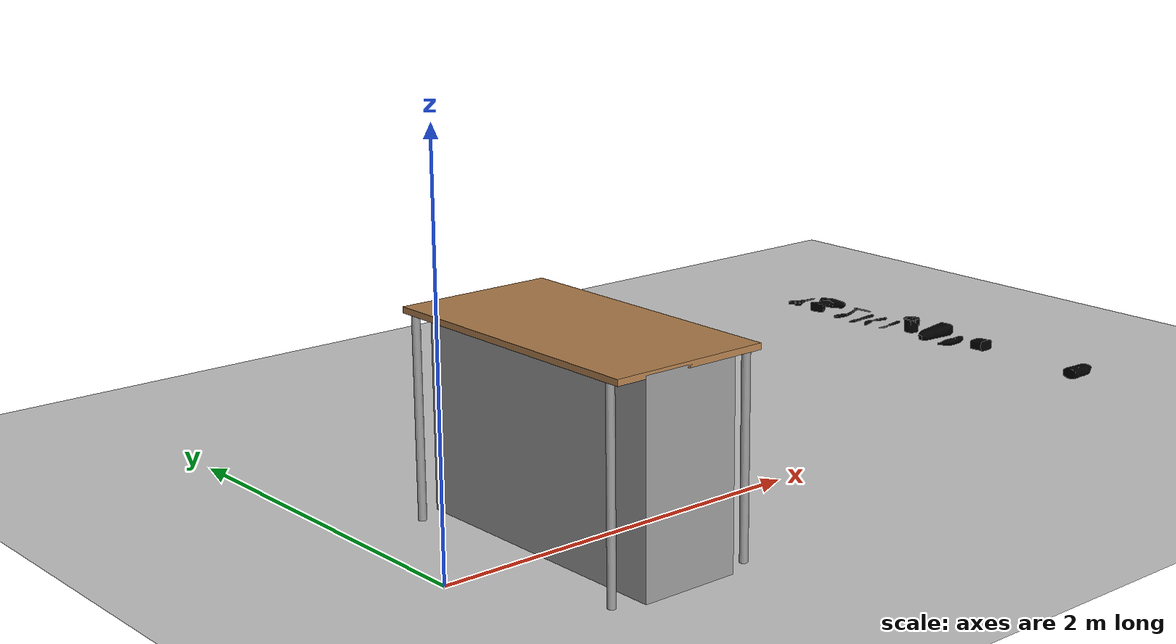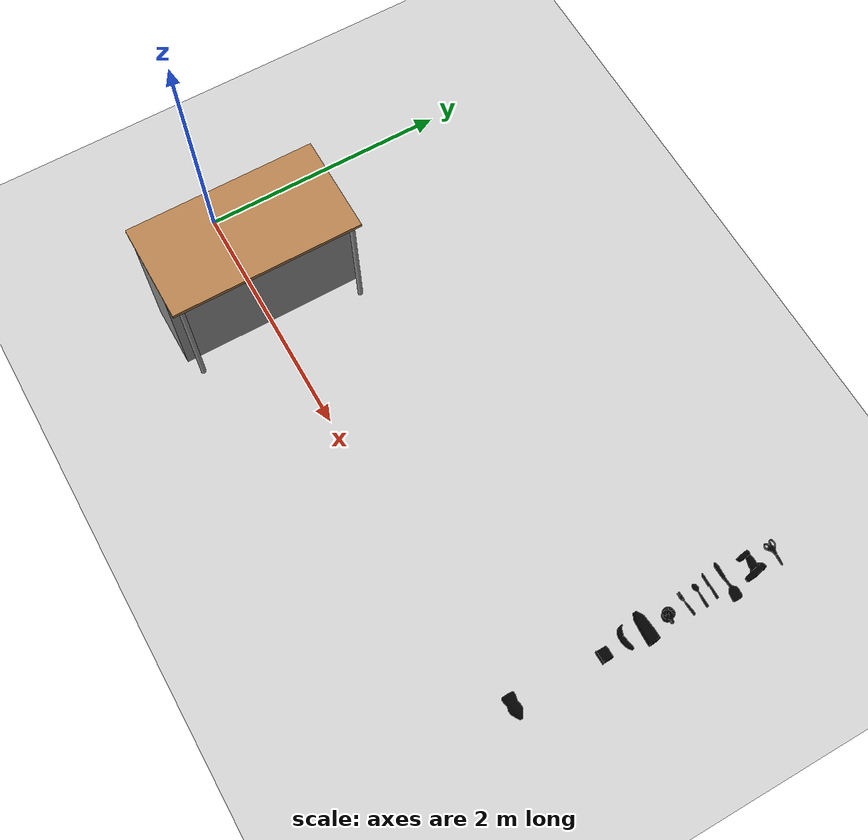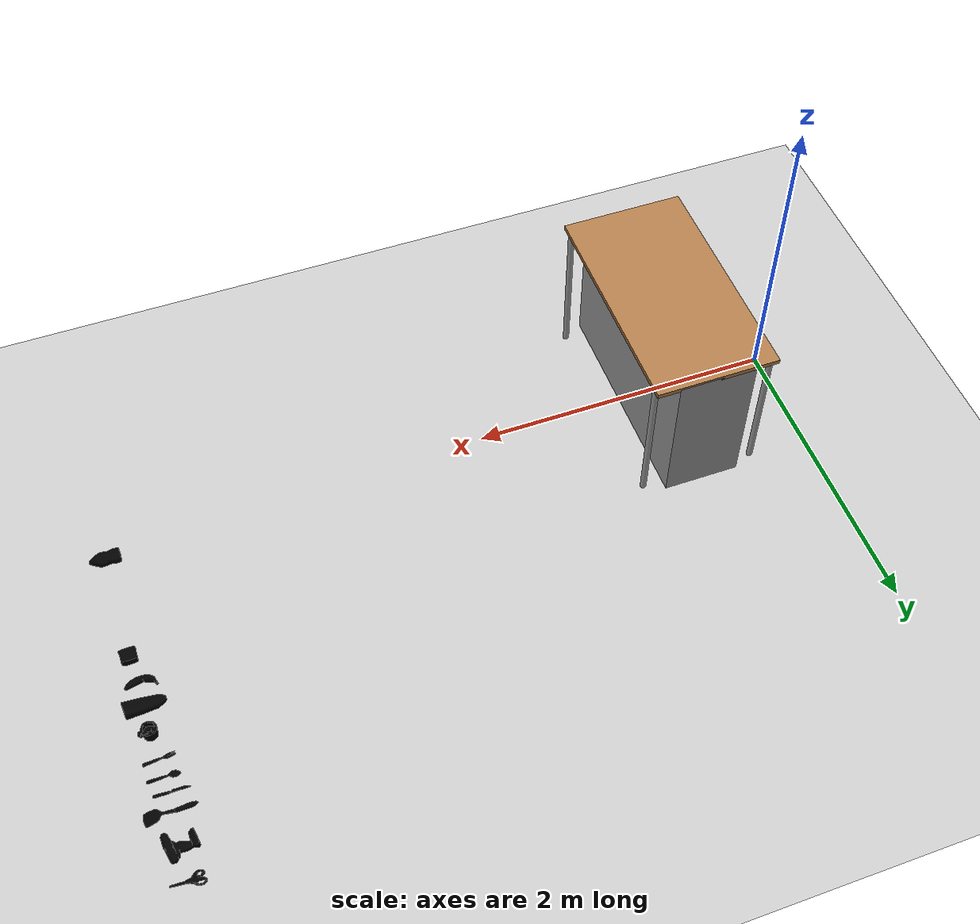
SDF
<sdf version="1.7">
 <world name="default">
  <light name="sun" type="directional">
   <pose>0 0 10 0 -0 0</pose>
   <diffuse>0.8 0.8 0.8 1</diffuse>
   <specular>0.2 0.2 0.2 1</specular>
   <attenuation>
    <range>1000</range>
    <constant>0.9</constant>
    <linear>0.01</linear>
    <quadratic>0.001</quadratic>
   </attenuation>
   <direction>-0.5 0.1 -0.9</direction>
   <spot><inner_angle>0</inner_angle><outer_angle>0</outer_angle><falloff>0</falloff></spot>
  </light>
  <model name="ground_plane">
   <static>1</static>
   <link name="link">
    <collision name="collision">
     <geometry><plane><normal>0 0 1</normal><size>100 100</size></plane></geometry>
     <surface>
      <contact><collide_bitmask>65535</collide_bitmask></contact>
      <friction><ode><mu>100</mu><mu2>50</mu2></ode></friction>
     </surface>
    </collision>
    <visual name="visual">
     <cast_shadows>0</cast_shadows>
     <geometry><plane><normal>0 0 1</normal><size>100 100</size></plane></geometry>
     <material>
      <script><uri>file://media/materials/scripts/gazebo.material</uri><name>Gazebo/Grey</name></script>
     </material>
    </visual>
   </link>
  </model>
  <gravity>0 0 -9.8</gravity>
  <magnetic_field>6e-06 2.3e-05 -4.2e-05</magnetic_field>
  <atmosphere type="adiabatic"/>
  <physics type="ode">
   <max_step_size>0.001</max_step_size>
   <real_time_factor>1</real_time_factor>
   <real_time_update_rate>1000</real_time_update_rate>
  </physics>
  <scene><ambient>0.4 0.4 0.4 1</ambient><background>0.7 0.7 0.7 1</background><shadows>1</shadows></scene>
  <spherical_coordinates>
   <surface_model>EARTH_WGS84</surface_model>
   <latitude_deg>0</latitude_deg>
   <longitude_deg>0</longitude_deg>
   <elevation>0</elevation>
   <heading_deg>0</heading_deg>
  </spherical_coordinates>
  <audio><device>default</device></audio>
  <model name="table">
   <static>1</static>
   <link name="link">
    <collision name="surface">
     <pose>0 0 1 0 -0 0</pose>
     <geometry><box><size>1.5 0.8 0.03</size></box></geometry>
     <surface><friction><ode><mu>0.6</mu><mu2>0.6</mu2></ode></friction></surface>
    </collision>
    <visual name="visual1">
     <pose>0 0 1 0 -0 0</pose>
     <geometry><box><size>1.5 0.8 0.03</size></box></geometry>
     <material>
      <script><uri>file://media/materials/scripts/gazebo.material</uri><name>Gazebo/Wood</name></script>
     </material>
    </visual>
    <collision name="front_left_leg">
     <pose>0.68 0.38 0.5 0 -0 0</pose>
     <geometry><cylinder><radius>0.02</radius><length>1</length></cylinder></geometry>
    </collision>
    <visual name="front_left_leg">
     <pose>0.68 0.38 0.5 0 -0 0</pose>
     <geometry><cylinder><radius>0.02</radius><length>1</length></cylinder></geometry>
     <material>
      <script><uri>file://media/materials/scripts/gazebo.material</uri><name>Gazebo/Grey</name></script>
     </material>
    </visual>
    <collision name="front_right_leg">
     <pose>0.68 -0.38 0.5 0 -0 0</pose>
     <geometry><cylinder><radius>0.02</radius><length>1</length></cylinder></geometry>
    </collision>
    <visual name="front_right_leg">
     <pose>0.68 -0.38 0.5 0 -0 0</pose>
     <geometry><cylinder><radius>0.02</radius><length>1</length></cylinder></geometry>
     <material>
      <script><uri>file://media/materials/scripts/gazebo.material</uri><name>Gazebo/Grey</name></script>
     </material>
    </visual>
    <collision name="back_right_leg">
     <pose>-0.68 -0.38 0.5 0 -0 0</pose>
     <geometry><cylinder><radius>0.02</radius><length>1</length></cylinder></geometry>
    </collision>
    <visual name="back_right_leg">
     <pose>-0.68 -0.38 0.5 0 -0 0</pose>
     <geometry><cylinder><radius>0.02</radius><length>1</length></cylinder></geometry>
     <material>
      <script><uri>file://media/materials/scripts/gazebo.material</uri><name>Gazebo/Grey</name></script>
     </material>
    </visual>
    <collision name="back_left_leg">
     <pose>-0.68 0.38 0.5 0 -0 0</pose>
     <geometry><cylinder><radius>0.02</radius><length>1</length></cylinder></geometry>
    </collision>
    <visual name="back_left_leg">
     <pose>-0.68 0.38 0.5 0 -0 0</pose>
     <geometry><cylinder><radius>0.02</radius><length>1</length></cylinder></geometry>
     <material>
      <script><uri>file://media/materials/scripts/gazebo.material</uri><name>Gazebo/Grey</name></script>
     </material>
    </visual>
   </link>
   <pose>0.766531 0.035712 0 0 0 -1.5708</pose>
  </model>
  <model name="006_mustard_bottle_textured">
   <pose>4.51492 0.098991 0.03077 0.003849 0.00509 -0.001494</pose>
   <link name="body">
    <inertial>
     <mass>1</mass>
     <inertia>
      <ixx>0.000701409</ixx>
      <ixy>0</ixy>
      <ixz>0</ixz>
      <iyy>0.0023773</iyy>
      <iyz>0</iyz>
      <izz>0.00272813</izz>
     </inertia>
    </inertial>
    <visual name="visual">
     <geometry><mesh><uri>model://006_mustard_bottle_textured/textured.dae</uri></mesh></geometry>
     <pose>-0.074844 -0.005003 -0.027665 -1.56331 0.399983 -1.56606</pose>
    </visual>
    <collision name="collision">
     <geometry><mesh><uri>model://006_mustard_bottle_textured/textured.col.dae</uri></mesh></geometry>
     <surface>
      <friction><ode><mu>0.8</mu><mu2>0.8</mu2><slip1>0</slip1><slip2>0</slip2></ode></friction>
      <contact><ode><kp>1e+06</kp><kd>1</kd><max_vel>0</max_vel></ode></contact>
     </surface>
     <pose>-0.074844 -0.005003 -0.027665 -1.56331 0.399983 -1.56606</pose>
    </collision>
   </link>
  </model>
  <model name="010_potted_meat_can_textured">
   <pose>4.53513 0.832101 0.028531 -0.032523 0.003367 0.012391</pose>
   <link name="body">
    <inertial>
     <mass>1</mass>
     <inertia>
      <ixx>0.000703846</ixx>
      <ixy>0</ixy>
      <ixz>0</ixz>
      <iyy>0.000911552</iyy>
      <iyz>0</iyz>
      <izz>0.00121067</izz>
     </inertia>
    </inertial>
    <visual name="visual">
     <geometry><mesh><uri>model://010_potted_meat_can_textured/textured.dae</uri></mesh></geometry>
     <pose>0.033988 0.038319 0.024097 1.56002 0.055072 0.006042</pose>
    </visual>
    <collision name="collision">
     <geometry><mesh><uri>model://010_potted_meat_can_textured/textured.col.dae</uri></mesh></geometry>
     <surface>
      <friction><ode><mu>0.8</mu><mu2>0.8</mu2><slip1>0</slip1><slip2>0</slip2></ode></friction>
      <contact><ode><kp>1e+06</kp><kd>1</kd><max_vel>0</max_vel></ode></contact>
     </surface>
     <pose>0.033988 0.038319 0.024097 1.56002 0.055072 0.006042</pose>
    </collision>
   </link>
  </model>
  <model name="011_banana_textured">
   <pose>4.50322 1.01104 0.01816 -0.201041 0.003296 -0.003809</pose>
   <link name="body">
    <inertial>
     <mass>1</mass>
     <inertia>
      <ixx>0.000237588</ixx>
      <ixy>0</ixy>
      <ixz>0</ixz>
      <iyy>0.00239469</iyy>
      <iyz>0</iyz>
      <izz>0.00249049</izz>
     </inertia>
    </inertial>
    <visual name="visual">
     <geometry><mesh><uri>model://011_banana_textured/textured.dae</uri></mesh></geometry>
     <pose>0.000796 0.013917 -0.01464 -0.067169 -0.189695 1.89696</pose>
    </visual>
    <collision name="collision">
     <geometry><mesh><uri>model://011_banana_textured/textured.col.dae</uri></mesh></geometry>
     <surface>
      <friction><ode><mu>0.8</mu><mu2>0.8</mu2><slip1>0</slip1><slip2>0</slip2></ode></friction>
      <contact><ode><kp>1e+06</kp><kd>1</kd><max_vel>0</max_vel></ode></contact>
     </surface>
     <pose>0.000796 0.013917 -0.01464 -0.067169 -0.189695 1.89696</pose>
    </collision>
   </link>
  </model>
  <model name="021_bleach_cleanser_textured">
   <pose>4.53473 1.18489 0.032006 0.018511 -0.037487 -0.00058</pose>
   <link name="body">
    <inertial>
     <mass>1</mass>
     <inertia>
      <ixx>0.000787063</ixx>
      <ixy>0</ixy>
      <ixz>0</ixz>
      <iyy>0.00437242</iyy>
      <iyz>0</iyz>
      <izz>0.00469601</izz>
     </inertia>
    </inertial>
    <visual name="visual">
     <geometry><mesh><uri>model://021_bleach_cleanser_textured/textured.dae</uri></mesh></geometry>
     <pose>0.098235 0.024242 0.011384 -1.57068 0.010427 1.64133</pose>
    </visual>
    <collision name="collision">
     <geometry><mesh><uri>model://021_bleach_cleanser_textured/textured.col.dae</uri></mesh></geometry>
     <surface>
      <friction><ode><mu>0.8</mu><mu2>0.8</mu2><slip1>0</slip1><slip2>0</slip2></ode></friction>
      <contact><ode><kp>1e+06</kp><kd>1</kd><max_vel>0</max_vel></ode></contact>
     </surface>
     <pose>0.098235 0.024242 0.011384 -1.57068 0.010427 1.64133</pose>
    </collision>
   </link>
  </model>
  <model name="025_mug_textured">
   <pose>4.52012 1.36894 0.028347 0.081375 -0.06137 -0.000656</pose>
   <link name="body">
    <inertial>
     <mass>1</mass>
     <inertia>
      <ixx>0.000860082</ixx>
      <ixy>0</ixy>
      <ixz>0</ixz>
      <iyy>0.000977917</iyy>
      <iyz>0</iyz>
      <izz>0.00125152</izz>
     </inertia>
    </inertial>
    <visual name="visual">
     <geometry><mesh><uri>model://025_mug_textured/textured.dae</uri></mesh></geometry>
     <pose>0.017736 -0.018134 -0.026654 -0.079307 0.06392 0.029619</pose>
    </visual>
    <collision name="collision">
     <geometry><mesh><uri>model://025_mug_textured/textured.col.dae</uri></mesh></geometry>
     <surface>
      <friction><ode><mu>0.8</mu><mu2>0.8</mu2><slip1>0</slip1><slip2>0</slip2></ode></friction>
      <contact><ode><kp>1e+06</kp><kd>1</kd><max_vel>0</max_vel></ode></contact>
     </surface>
     <pose>0.017736 -0.018134 -0.026654 -0.079307 0.06392 0.029619</pose>
    </collision>
   </link>
  </model>
  <model name="030_fork_textured">
   <pose>4.54321 1.54088 0.007632 -0.118125 -0.016151 0.09569</pose>
   <link name="body">
    <inertial>
     <mass>1</mass>
     <inertia>
      <ixx>3.34472e-05</ixx>
      <ixy>0</ixy>
      <ixz>0</ixz>
      <iyy>0.00239393</iyy>
      <iyz>0</iyz>
      <izz>0.00240903</izz>
     </inertia>
    </inertial>
    <visual name="visual">
     <geometry><mesh><uri>model://030_fork_textured/textured.dae</uri></mesh></geometry>
     <pose>-0.008612 -0.022177 0.003868 -3.01703 -0.013342 -0.002714</pose>
    </visual>
    <collision name="collision">
     <geometry><mesh><uri>model://030_fork_textured/textured.col.dae</uri></mesh></geometry>
     <surface>
      <friction><ode><mu>0.8</mu><mu2>0.8</mu2><slip1>0</slip1><slip2>0</slip2></ode></friction>
      <contact><ode><kp>1e+06</kp><kd>1</kd><max_vel>0</max_vel></ode></contact>
     </surface>
     <pose>-0.008612 -0.022177 0.003868 -3.01703 -0.013342 -0.002714</pose>
    </collision>
   </link>
  </model>
  <model name="031_spoon_textured">
   <pose>4.51819 1.65867 0.010714 -0.047404 0.02438 -0.010502</pose>
   <link name="body">
    <inertial>
     <mass>1</mass>
     <inertia>
      <ixx>4.85972e-05</ixx>
      <ixy>0</ixy>
      <ixz>0</ixz>
      <iyy>0.00371636</iyy>
      <iyz>0</iyz>
      <izz>0.00374005</izz>
     </inertia>
    </inertial>
    <visual name="visual">
     <geometry><mesh><uri>model://031_spoon_textured/textured.dae</uri></mesh></geometry>
     <pose>0.013807 0.016134 -0.008905 0.034777 -0.042943 0.345534</pose>
    </visual>
    <collision name="collision">
     <geometry><mesh><uri>model://031_spoon_textured/textured.col.dae</uri></mesh></geometry>
     <surface>
      <friction><ode><mu>0.8</mu><mu2>0.8</mu2><slip1>0</slip1><slip2>0</slip2></ode></friction>
      <contact><ode><kp>1e+06</kp><kd>1</kd><max_vel>0</max_vel></ode></contact>
     </surface>
     <pose>0.013807 0.016134 -0.008905 0.034777 -0.042943 0.345534</pose>
    </collision>
   </link>
  </model>
  <model name="032_knife_textured">
   <pose>4.51241 1.75641 0.007731 0.186544 -0.00999 -0.003133</pose>
   <link name="body">
    <inertial>
     <mass>1</mass>
     <inertia>
      <ixx>2.66484e-05</ixx>
      <ixy>0</ixy>
      <ixz>0</ixz>
      <iyy>0.00375117</iyy>
      <iyz>0</iyz>
      <izz>0.00375908</izz>
     </inertia>
    </inertial>
    <visual name="visual">
     <geometry><mesh><uri>model://032_knife_textured/textured.dae</uri></mesh></geometry>
     <pose>-0.00883 -0.02935 -0.001826 -2.92323 -0.048169 -0.015742</pose>
    </visual>
    <collision name="collision">
     <geometry><mesh><uri>model://032_knife_textured/textured.col.dae</uri></mesh></geometry>
     <surface>
      <friction><ode><mu>0.8</mu><mu2>0.8</mu2><slip1>0</slip1><slip2>0</slip2></ode></friction>
      <contact><ode><kp>1e+06</kp><kd>1</kd><max_vel>0</max_vel></ode></contact>
     </surface>
     <pose>-0.00883 -0.02935 -0.001826 -2.92323 -0.048169 -0.015742</pose>
    </collision>
   </link>
  </model>
  <model name="033_spatula_textured">
   <pose>4.49682 1.87715 0.014456 -0.002671 -0.002794 0.003626</pose>
   <link name="body">
    <inertial>
     <mass>1</mass>
     <inertia>
      <ixx>0.000224009</ixx>
      <ixy>0</ixy>
      <ixz>0</ixz>
      <iyy>0.00951728</iyy>
      <iyz>0</iyz>
      <izz>0.00965166</izz>
     </inertia>
    </inertial>
    <visual name="visual">
     <geometry><mesh><uri>model://033_spatula_textured/textured.dae</uri></mesh></geometry>
     <pose>0.024317 0.088103 -0.013007 0.003412 0.001842 0.265183</pose>
    </visual>
    <collision name="collision">
     <geometry><mesh><uri>model://033_spatula_textured/textured.col.dae</uri></mesh></geometry>
     <surface>
      <friction><ode><mu>0.8</mu><mu2>0.8</mu2><slip1>0</slip1><slip2>0</slip2></ode></friction>
      <contact><ode><kp>1e+06</kp><kd>1</kd><max_vel>0</max_vel></ode></contact>
     </surface>
     <pose>0.024317 0.088103 -0.013007 0.003412 0.001842 0.265183</pose>
    </collision>
   </link>
  </model>
  <model name="035_power_drill_textured">
   <pose>4.51429 2.09611 0.02803 -0.016491 0.020154 -0.000819</pose>
   <link name="body">
    <inertial>
     <mass>1</mass>
     <inertia>
      <ixx>0.00155602</ixx>
      <ixy>0</ixy>
      <ixz>0</ixz>
      <iyy>0.00405654</iyy>
      <iyz>0</iyz>
      <izz>0.00534657</izz>
     </inertia>
    </inertial>
    <visual name="visual">
     <geometry><mesh><uri>model://035_power_drill_textured/textured.dae</uri></mesh></geometry>
     <pose>-0.028656 0.027053 0.023211 -3.11648 0.030902 1.73808</pose>
    </visual>
    <collision name="collision">
     <geometry><mesh><uri>model://035_power_drill_textured/textured.col.dae</uri></mesh></geometry>
     <surface>
      <friction><ode><mu>0.8</mu><mu2>0.8</mu2><slip1>0</slip1><slip2>0</slip2></ode></friction>
      <contact><ode><kp>1e+06</kp><kd>1</kd><max_vel>0</max_vel></ode></contact>
     </surface>
     <pose>-0.028656 0.027053 0.023211 -3.11648 0.030902 1.73808</pose>
    </collision>
   </link>
  </model>
  <model name="037_scissors_textured">
   <pose>4.47686 2.30176 0.007927 0.010206 0.002021 -0.018791</pose>
   <link name="body">
    <inertial>
     <mass>1</mass>
     <inertia>
      <ixx>0.000361799</ixx>
      <ixy>0</ixy>
      <ixz>0</ixz>
      <iyy>0.00151751</iyy>
      <iyz>0</iyz>
      <izz>0.00185772</izz>
     </inertia>
    </inertial>
    <visual name="visual">
     <geometry><mesh><uri>model://037_scissors_textured/textured.dae</uri></mesh></geometry>
     <pose>-0.007504 -0.013006 0.007225 3.13986 -0.011627 1.26054</pose>
    </visual>
    <collision name="collision">
     <geometry><mesh><uri>model://037_scissors_textured/textured.col.dae</uri></mesh></geometry>
     <surface>
      <friction><ode><mu>0.8</mu><mu2>0.8</mu2><slip1>0</slip1><slip2>0</slip2></ode></friction>
      <contact><ode><kp>1e+06</kp><kd>1</kd><max_vel>0</max_vel></ode></contact>
     </surface>
     <pose>-0.007504 -0.013006 0.007225 3.13986 -0.011627 1.26054</pose>
    </collision>
   </link>
  </model>
  <model name="table_box">
   <link name="link">
    <inertial>
     <mass>1</mass>
     <inertia>
      <ixx>0.166667</ixx>
      <ixy>0</ixy>
      <ixz>0</ixz>
      <iyy>0.166667</iyy>
      <iyz>0</iyz>
      <izz>0.166667</izz>
     </inertia>
    </inertial>
    <visual name="visual">
     <geometry><box><size>0.5 1.5 1</size></box></geometry>
     <material>
      <script><name>Gazebo/Grey</name><uri>file://media/materials/scripts/gazebo.material</uri></script>
      <shader type="pixel"><normal_map>__default__</normal_map></shader>
      <ambient>0.3 0.3 0.3 0</ambient>
      <diffuse>0.7 0.7 0.7 0</diffuse>
      <specular>0.01 0.01 0.01 0</specular>
      <emissive>0 0 0 1</emissive>
     </material>
    </visual>
    <collision name="collision">
     <geometry><box><size>0.5 1.5 1</size></box></geometry>
     <surface>
      <friction>
       <ode><mu>1</mu><mu2>1</mu2><fdir1>0 0 0</fdir1><slip1>0</slip1><slip2>0</slip2></ode>
       <torsional>
        <coefficient>1</coefficient>
        <patch_radius>0</patch_radius>
        <surface_radius>0</surface_radius>
        <use_patch_radius>1</use_patch_radius>
        <ode><slip>0</slip></ode>
       </torsional>
      </friction>
      <bounce><restitution_coefficient>0</restitution_coefficient><threshold>1e+06</threshold></bounce>
      <contact>
       <collide_without_contact>0</collide_without_contact>
       <collide_without_contact_bitmask>1</collide_without_contact_bitmask>
       <collide_bitmask>1</collide_bitmask>
       <ode>
        <soft_cfm>0</soft_cfm>
        <soft_erp>0.2</soft_erp>
        <kp>1e+13</kp>
        <kd>1</kd>
        <max_vel>0.01</max_vel>
        <min_depth>0</min_depth>
       </ode>
       <bullet>
        <split_impulse>1</split_impulse>
        <split_impulse_penetration_threshold>-0.01</split_impulse_penetration_threshold>
        <soft_cfm>0</soft_cfm>
        <soft_erp>0.2</soft_erp>
        <kp>1e+13</kp>
        <kd>1</kd>
       </bullet>
      </contact>
     </surface>
    </collision>
   </link>
   <static>1</static>
   <pose>0.766531 0.035712 0.5 0 -0 0</pose>
  </model>
 </world>
</sdf>
